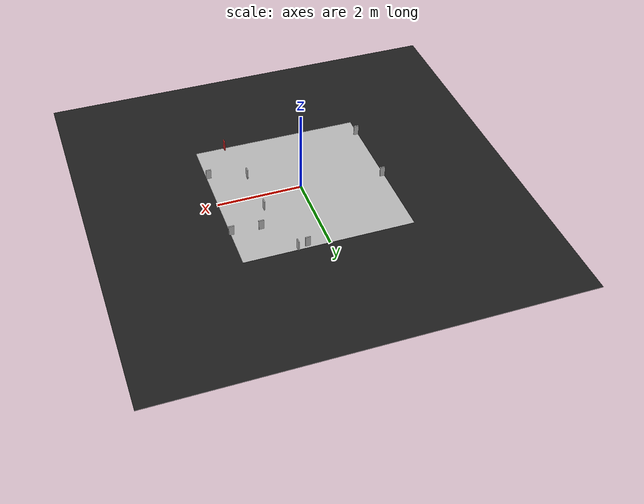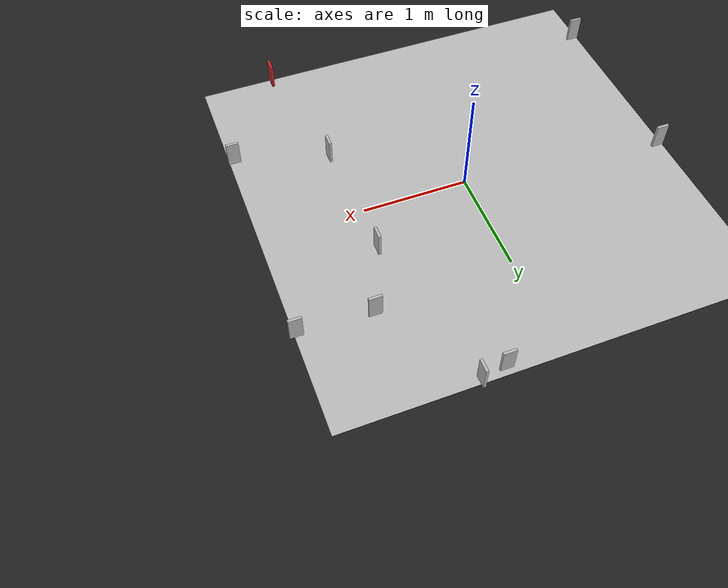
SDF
<sdf version="1.7">
 <world name="default">
  <scene>
   <ambient>0.8 0.8 0.8 1</ambient>
   <shadows>0</shadows>
   <grid>0</grid>
   <background>0.7 0.7 0.7 1</background>
  </scene>
  <model name="course">
   <static>1</static>
   <link name="course_link">
    <collision name="course_collision">
     <geometry><plane><normal>0 0 1</normal><size>4 4</size></plane></geometry>
     <surface><friction><ode><mu>100</mu><mu2>50</mu2></ode></friction></surface>
    </collision>
    <visual name="course_visual">
     <cast_shadows>0</cast_shadows>
     <geometry><plane><normal>0 0 1</normal><size>4 4</size></plane></geometry>
     <material>
      <script>
       <uri>model://turtlebot3_autorace_2020/course/materials/scripts</uri>
       <uri>model://turtlebot3_autorace_2020/course/materials/textures</uri>
       <name>course</name>
      </script>
     </material>
    </visual>
   </link>
   <pose>0 0 0 0 0 -3.14</pose>
  </model>
  <model name="traffic_light">
   <link name="traffic_light">
    <collision name="collision"><geometry><box><size>0.12 0.025 0.25</size></box></geometry></collision>
    <visual name="visual">
     <geometry><box><size>0.12 0.025 0.25</size></box></geometry>
     <material>
      <script>
       <uri>model://turtlebot3_autorace_2020/traffic_light/materials/scripts</uri>
       <uri>model://turtlebot3_autorace_2020/traffic_light/materials/textures</uri>
       <name>traffic_light_red</name>
      </script>
     </material>
    </visual>
   </link>
   <plugin name="traffic_light_plugin" filename="libtraffic_light_plugin.so"/>
   <static>1</static>
   <pose>1.3 -1.95 0.13 0 0 -1.57</pose>
  </model>
  <model name="traffic_parking">
   <static>1</static>
   <link name="box">
    <collision name="collision"><geometry><box><size>0.12 0.025 0.25</size></box></geometry></collision>
    <visual name="visual">
     <geometry><box><size>0.12 0.025 0.25</size></box></geometry>
     <material>
      <script>
       <uri>model://turtlebot3_autorace_2020/traffic_parking/materials/scripts</uri>
       <uri>model://turtlebot3_autorace_2020/traffic_parking/materials/textures</uri>
       <name>traffic_parking</name>
      </script>
     </material>
    </visual>
   </link>
   <pose>0.73998 1.97532 0.13 0 0 -1.57</pose>
  </model>
  <model name="speed_limit_30">
   <pose>-1.94761 -1.4965 0.125004 -8e-06 -6e-05 6.9e-05</pose>
   <link name="box">
    <collision name="collision"><geometry><box><size>0.12 0.025 0.25</size></box></geometry></collision>
    <visual name="visual">
     <geometry><box><size>0.12 0.025 0.25</size></box></geometry>
     <material>
      <script>
       <uri>model://turtlebot3_autorace_2020/speed_limit_30/materials/scripts</uri>
       <uri>model://turtlebot3_autorace_2020/speed_limit_30/materials/textures</uri>
       <name>speed_limit_30</name>
      </script>
     </material>
    </visual>
    <inertial>
     <inertia><ixx>1</ixx><ixy>0</ixy><ixz>0</ixz><iyy>1</iyy><iyz>0</iyz><izz>1</izz></inertia>
     <mass>1</mass>
    </inertial>
   </link>
  </model>
  <model name="traffic_pl_left">
   <static>1</static>
   <link name="box">
    <collision name="collision"><geometry><box><size>0.12 0.025 0.25</size></box></geometry></collision>
    <visual name="visual">
     <geometry><box><size>0.12 0.025 0.25</size></box></geometry>
     <material>
      <script>
       <uri>model://turtlebot3_autorace_2020/traffic_pl_left/materials/scripts</uri>
       <uri>model://turtlebot3_autorace_2020/traffic_pl_left/materials/textures</uri>
       <name>traffic_pl_left</name>
      </script>
     </material>
    </visual>
   </link>
   <pose>0.5 1.93486 0.13 0 -0 0</pose>
  </model>
  <model name="traffic_intersection">
   <static>1</static>
   <link name="box">
    <collision name="collision"><geometry><box><size>0.12 0.025 0.25</size></box></geometry></collision>
    <visual name="visual">
     <geometry><box><size>0.12 0.025 0.25</size></box></geometry>
     <material>
      <script>
       <uri>model://turtlebot3_autorace_2020/traffic_intersection/materials/scripts</uri>
       <uri>model://turtlebot3_autorace_2020/traffic_intersection/materials/textures</uri>
       <name>traffic_intersection</name>
      </script>
     </material>
    </visual>
   </link>
   <pose>1.95 -1 0.125 0 -0 0</pose>
  </model>
  <model name="traffic_right_left">
   <static>1</static>
   <link name="traffic_right_left">
    <collision name="collision"><geometry><box><size>0.12 0.025 0.25</size></box></geometry></collision>
    <visual name="visual">
     <geometry><box><size>0.12 0.025 0.25</size></box></geometry>
     <material>
      <script>
       <uri>model://turtlebot3_autorace_2020/traffic_right_left/materials/scripts</uri>
       <uri>model://turtlebot3_autorace_2020/traffic_right_left/materials/textures</uri>
       <name>traffic_right</name>
      </script>
     </material>
    </visual>
   </link>
   <plugin name="traffic_right_left_plugin" filename="libtraffic_right_left_plugin.so"/>
   <static>1</static>
   <pose>1.08526 -0.74027 0.125 0 0 -1.57</pose>
  </model>
  <light name="sun" type="directional">
   <pose>0 0 10 0 -0 0</pose>
   <diffuse>0.8 0.8 0.8 1</diffuse>
   <specular>0.1 0.1 0.1 1</specular>
   <attenuation>
    <range>1000</range>
    <constant>0.9</constant>
    <linear>0.01</linear>
    <quadratic>0.001</quadratic>
   </attenuation>
   <direction>-0.5 0.5 -1</direction>
   <spot><inner_angle>0</inner_angle><outer_angle>0</outer_angle><falloff>0</falloff></spot>
  </light>
  <model name="ground2">
   <pose>0.004281 0.047958 -0.1 0 -0 0</pose>
   <static>1</static>
   <link name="ground">
    <collision name="ground_coll"><geometry><box><size>8 8 0.01</size></box></geometry></collision>
    <visual name="ground_vis">
     <geometry><box><size>10 10 0.01</size></box></geometry>
     <material>
      <script><uri>file://media/materials/scripts/gazebo.material</uri><name>Gazebo/FlatBlack</name></script>
     </material>
    </visual>
   </link>
  </model>
  <gravity>0 0 -9.8</gravity>
  <magnetic_field>6e-06 2.3e-05 -4.2e-05</magnetic_field>
  <atmosphere type="adiabatic"/>
  <physics name="default_physics" default="0" type="ode">
   <max_step_size>0.001</max_step_size>
   <real_time_factor>1</real_time_factor>
   <real_time_update_rate>1000</real_time_update_rate>
  </physics>
  <spherical_coordinates>
   <surface_model>EARTH_WGS84</surface_model>
   <latitude_deg>0</latitude_deg>
   <longitude_deg>0</longitude_deg>
   <elevation>0</elevation>
   <heading_deg>0</heading_deg>
  </spherical_coordinates>
  <light name="user_point_light_1" type="point">
   <pose>-1.64815 0.604519 1 0 -0 0</pose>
   <diffuse>0.5 0.5 0.5 1</diffuse>
   <specular>0.1 0.1 0.1 1</specular>
   <attenuation>
    <range>20</range>
    <constant>0.5</constant>
    <linear>0.01</linear>
    <quadratic>0.001</quadratic>
   </attenuation>
   <cast_shadows>0</cast_shadows>
   <direction>0 0 -1</direction>
   <spot><inner_angle>0</inner_angle><outer_angle>0</outer_angle><falloff>0</falloff></spot>
  </light>
  <light name="user_point_light_2" type="point">
   <pose>1.63854 1.69565 1 0 -0 0</pose>
   <diffuse>0.5 0.5 0.5 1</diffuse>
   <specular>0.1 0.1 0.1 1</specular>
   <attenuation>
    <range>20</range>
    <constant>0.5</constant>
    <linear>0.01</linear>
    <quadratic>0.001</quadratic>
   </attenuation>
   <cast_shadows>0</cast_shadows>
   <direction>0 0 -1</direction>
   <spot><inner_angle>0</inner_angle><outer_angle>0</outer_angle><falloff>0</falloff></spot>
  </light>
  <light name="user_point_light_3" type="point">
   <pose>0.42 -3.31 1 0 -0 0</pose>
   <diffuse>0.5 0.5 0.5 1</diffuse>
   <specular>0.1 0.1 0.1 1</specular>
   <attenuation>
    <range>20</range>
    <constant>0.5</constant>
    <linear>0.01</linear>
    <quadratic>0.001</quadratic>
   </attenuation>
   <cast_shadows>0</cast_shadows>
   <direction>0 0 -1</direction>
   <spot><inner_angle>0</inner_angle><outer_angle>0</outer_angle><falloff>0</falloff></spot>
  </light>
  <audio><device>default</device></audio>
  <model name="speed_limit_100">
   <pose>-1.94925 0.217146 0.125 -3e-06 -6e-06 7.5e-05</pose>
   <link name="box">
    <collision name="collision"><geometry><box><size>0.12 0.025 0.25</size></box></geometry></collision>
    <visual name="visual">
     <geometry><box><size>0.12 0.025 0.25</size></box></geometry>
     <material>
      <script>
       <uri>model://turtlebot3_autorace_2020/speed_limit_100/materials/scripts</uri>
       <uri>model://turtlebot3_autorace_2020/speed_limit_100/materials/textures</uri>
       <name>speed_limit_100</name>
      </script>
     </material>
    </visual>
    <inertial>
     <inertia><ixx>1</ixx><ixy>0</ixy><ixz>0</ixz><iyy>1</iyy><iyz>0</iyz><izz>1</izz></inertia>
     <mass>1</mass>
    </inertial>
   </link>
  </model>
  <model name="school_zone">
   <pose>1.97895 1.05657 0.125001 0 1.2e-05 8.5e-05</pose>
   <link name="box">
    <collision name="collision"><geometry><box><size>0.12 0.025 0.25</size></box></geometry></collision>
    <visual name="visual">
     <geometry><box><size>0.12 0.025 0.25</size></box></geometry>
     <material>
      <script>
       <uri>model://turtlebot3_autorace_2020/school_zone/materials/scripts</uri>
       <uri>model://turtlebot3_autorace_2020/school_zone/materials/textures</uri>
       <name>school_zone</name>
      </script>
     </material>
    </visual>
    <inertial>
     <inertia><ixx>1</ixx><ixy>0</ixy><ixz>0</ixz><iyy>1</iyy><iyz>0</iyz><izz>1</izz></inertia>
     <mass>1</mass>
    </inertial>
   </link>
  </model>
  <model name="speed_bump">
   <static>1</static>
   <link name="box">
    <collision name="collision"><geometry><box><size>0.12 0.025 0.25</size></box></geometry></collision>
    <visual name="visual">
     <geometry><box><size>0.12 0.025 0.25</size></box></geometry>
     <material>
      <script>
       <uri>model://turtlebot3_autorace_2020/speed_bump/materials/scripts</uri>
       <uri>model://turtlebot3_autorace_2020/speed_bump/materials/textures</uri>
       <name>speed_bump</name>
      </script>
     </material>
    </visual>
   </link>
   <pose>1.04465 0.458605 0.125 0 0 -1.57</pose>
  </model>
  <model name="enclosure"><pose>1.01752 -1.48944 0 0 -0 0</pose></model>
  <model name="enclosure_0"><pose>0.155995 -0.030154 0 0 -0 0</pose></model>
  <physics type="ode">
   <max_step_size>0.001</max_step_size>
   <real_time_factor>1</real_time_factor>
   <real_time_update_rate>1000</real_time_update_rate>
   <solver><type>world</type><iters>150</iters><precon_iters>75</precon_iters></solver>
  </physics>
  <model name="school_zone_clone">
   <pose>1.30022 1.08604 0.125 -1e-06 -1e-06 8e-05</pose>
   <link name="box">
    <collision name="collision"><geometry><box><size>0.12 0.025 0.25</size></box></geometry></collision>
    <visual name="visual">
     <geometry><box><size>0.12 0.025 0.25</size></box></geometry>
     <material>
      <script>
       <uri>model://turtlebot3_autorace_2020/school_zone/materials/scripts</uri>
       <uri>model://turtlebot3_autorace_2020/school_zone/materials/textures</uri>
       <name>school_zone</name>
      </script>
     </material>
    </visual>
    <inertial>
     <inertia><ixx>1</ixx><ixy>0</ixy><ixz>0</ixz><iyy>1</iyy><iyz>0</iyz><izz>1</izz></inertia>
     <mass>1</mass>
    </inertial>
   </link>
  </model>
 </world>
</sdf>
